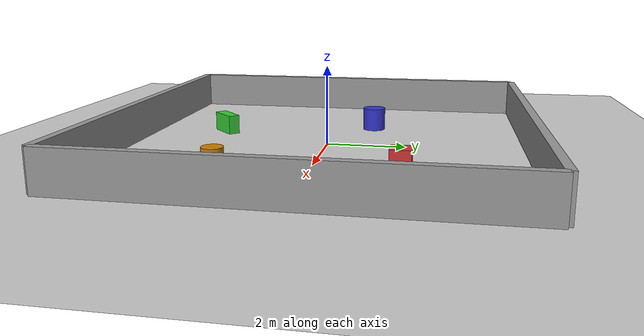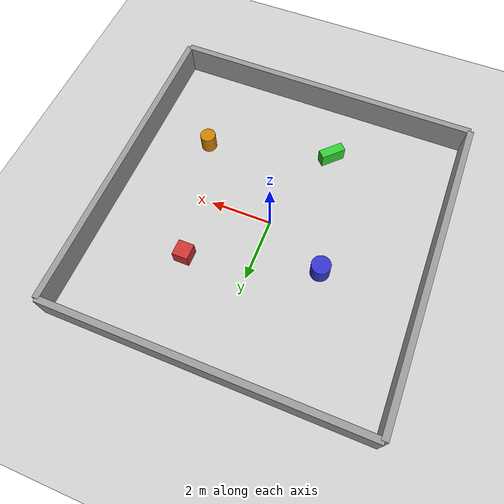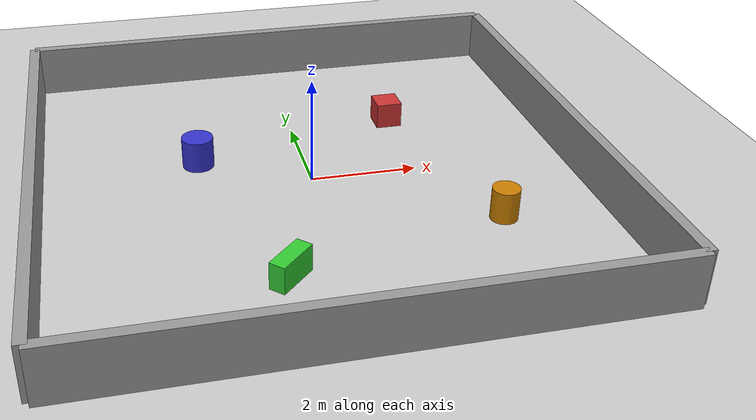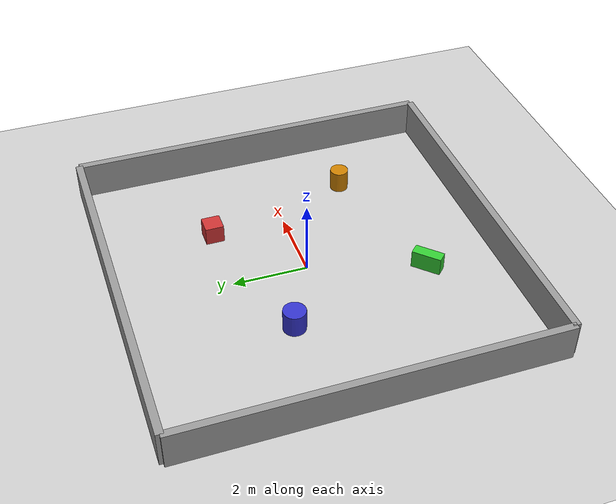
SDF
<?xml version="1.0" ?>
<sdf version="1.8">
  <world name="arena">

    <physics name="1ms" type="ignored">
      <max_step_size>0.001</max_step_size>
      <real_time_factor>1.0</real_time_factor>
    </physics>

    <plugin filename="gz-sim-physics-system"
            name="gz::sim::systems::Physics"/>
    <plugin filename="gz-sim-user-commands-system"
            name="gz::sim::systems::UserCommands"/>
    <plugin filename="gz-sim-scene-broadcaster-system"
            name="gz::sim::systems::SceneBroadcaster"/>
    <plugin filename="gz-sim-sensors-system"
        name="gz::sim::systems::Sensors">
      <render_engine>ogre2</render_engine>
    </plugin>

    <!-- Luz solar -->
    <light type="directional" name="sun">
      <cast_shadows>true</cast_shadows>
      <pose>0 0 10 0 0 0</pose>
      <diffuse>0.8 0.8 0.8 1</diffuse>
      <specular>0.2 0.2 0.2 1</specular>
      <attenuation>
        <range>1000</range>
        <constant>0.9</constant>
        <linear>0.01</linear>
        <quadratic>0.001</quadratic>
      </attenuation>
      <direction>-0.5 0.1 -0.9</direction>
    </light>

    <!-- Chão (20x20 metros) -->
    <model name="ground_plane">
      <static>true</static>
      <link name="link">
        <collision name="collision">
          <geometry>
            <plane>
              <normal>0 0 1</normal>
              <size>20 20</size>
            </plane>
          </geometry>
        </collision>
        <visual name="visual">
          <geometry>
            <plane>
              <normal>0 0 1</normal>
              <size>20 20</size>
            </plane>
          </geometry>
          <material>
            <ambient>0.8 0.8 0.8 1</ambient>
            <diffuse>0.8 0.8 0.8 1</diffuse>
            <specular>0.8 0.8 0.8 1</specular>
          </material>
        </visual>
      </link>
    </model>

    <!-- Parede Norte (y=+5) -->
    <model name="wall_north">
      <static>true</static>
      <pose>0 5 0.5 0 0 0</pose>
      <link name="link">
        <collision name="collision">
          <geometry><box><size>10 0.2 1</size></box></geometry>
        </collision>
        <visual name="visual">
          <geometry><box><size>10 0.2 1</size></box></geometry>
          <material>
            <ambient>0.6 0.6 0.6 1</ambient>
            <diffuse>0.6 0.6 0.6 1</diffuse>
          </material>
        </visual>
      </link>
    </model>

    <!-- Parede Sul (y=-5) -->
    <model name="wall_south">
      <static>true</static>
      <pose>0 -5 0.5 0 0 0</pose>
      <link name="link">
        <collision name="collision">
          <geometry><box><size>10 0.2 1</size></box></geometry>
        </collision>
        <visual name="visual">
          <geometry><box><size>10 0.2 1</size></box></geometry>
          <material>
            <ambient>0.6 0.6 0.6 1</ambient>
            <diffuse>0.6 0.6 0.6 1</diffuse>
          </material>
        </visual>
      </link>
    </model>

    <!-- Parede Leste (x=+5) -->
    <model name="wall_east">
      <static>true</static>
      <pose>5 0 0.5 0 0 0</pose>
      <link name="link">
        <collision name="collision">
          <geometry><box><size>0.2 10 1</size></box></geometry>
        </collision>
        <visual name="visual">
          <geometry><box><size>0.2 10 1</size></box></geometry>
          <material>
            <ambient>0.6 0.6 0.6 1</ambient>
            <diffuse>0.6 0.6 0.6 1</diffuse>
          </material>
        </visual>
      </link>
    </model>

    <!-- Parede Oeste (x=-5) -->
    <model name="wall_west">
      <static>true</static>
      <pose>-5 0 0.5 0 0 0</pose>
      <link name="link">
        <collision name="collision">
          <geometry><box><size>0.2 10 1</size></box></geometry>
        </collision>
        <visual name="visual">
          <geometry><box><size>0.2 10 1</size></box></geometry>
          <material>
            <ambient>0.6 0.6 0.6 1</ambient>
            <diffuse>0.6 0.6 0.6 1</diffuse>
          </material>
        </visual>
      </link>
    </model>

    <!-- Obstáculo 1: caixa vermelha -->
    <model name="obstacle_box_1">
      <static>true</static>
      <pose>2 2 0.25 0 0 0</pose>
      <link name="link">
        <collision name="collision">
          <geometry><box><size>0.5 0.5 0.5</size></box></geometry>
        </collision>
        <visual name="visual">
          <geometry><box><size>0.5 0.5 0.5</size></box></geometry>
          <material>
            <ambient>0.8 0.2 0.2 1</ambient>
            <diffuse>0.8 0.2 0.2 1</diffuse>
          </material>
        </visual>
      </link>
    </model>

    <!-- Obstáculo 2: cilindro azul -->
    <model name="obstacle_cylinder_1">
      <static>true</static>
      <pose>-2 1 0.3 0 0 0</pose>
      <link name="link">
        <collision name="collision">
          <geometry><cylinder><radius>0.3</radius><length>0.6</length></cylinder></geometry>
        </collision>
        <visual name="visual">
          <geometry><cylinder><radius>0.3</radius><length>0.6</length></cylinder></geometry>
          <material>
            <ambient>0.2 0.2 0.8 1</ambient>
            <diffuse>0.2 0.2 0.8 1</diffuse>
          </material>
        </visual>
      </link>
    </model>

    <!-- Obstáculo 3: caixa verde rotacionada 45 graus -->
    <model name="obstacle_box_2">
      <static>true</static>
      <pose>-1 -3 0.25 0 0 0.785</pose>
      <link name="link">
        <collision name="collision">
          <geometry><box><size>0.8 0.3 0.5</size></box></geometry>
        </collision>
        <visual name="visual">
          <geometry><box><size>0.8 0.3 0.5</size></box></geometry>
          <material>
            <ambient>0.2 0.8 0.2 1</ambient>
            <diffuse>0.2 0.8 0.2 1</diffuse>
          </material>
        </visual>
      </link>
    </model>

    <!-- Obstáculo 4: cilindro laranja -->
    <model name="obstacle_cylinder_2">
      <static>true</static>
      <pose>3 -2 0.3 0 0 0</pose>
      <link name="link">
        <collision name="collision">
          <geometry><cylinder><radius>0.25</radius><length>0.6</length></cylinder></geometry>
        </collision>
        <visual name="visual">
          <geometry><cylinder><radius>0.25</radius><length>0.6</length></cylinder></geometry>
          <material>
            <ambient>0.8 0.5 0.0 1</ambient>
            <diffuse>0.8 0.5 0.0 1</diffuse>
          </material>
        </visual>
      </link>
    </model>

  </world>
</sdf>
